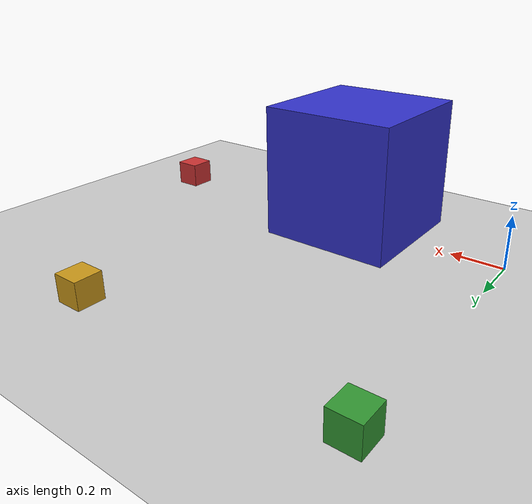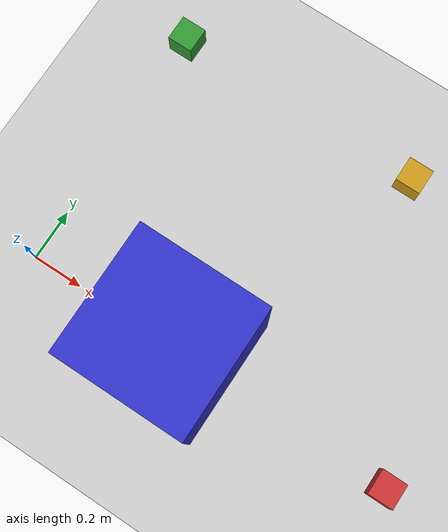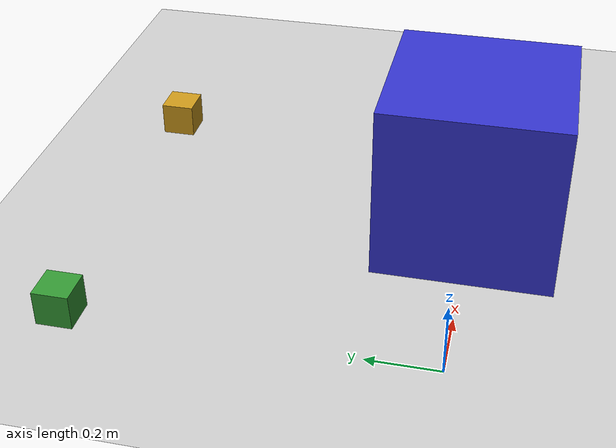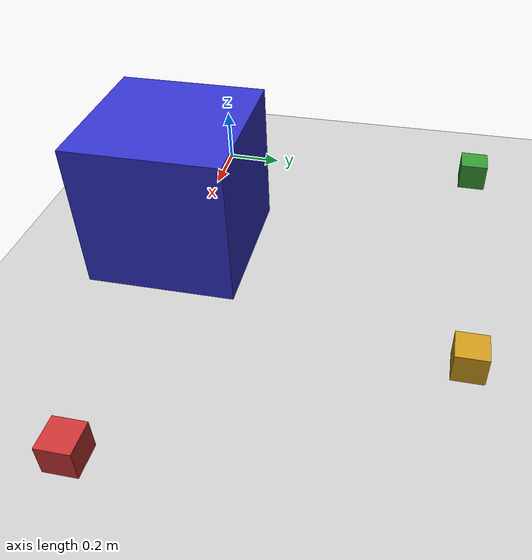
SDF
<?xml version="1.0" ?>
<sdf version="1.6">
    <world name="obstacle_world">

        <physics type="ode">
            <max_step_size>0.001</max_step_size>
            <real_time_factor>1.0</real_time_factor>
            <real_time_update_rate>1000</real_time_update_rate>
        </physics>

        <include>
            <uri>model://sun</uri>
        </include>

        <include>
            <uri>model://ground_plane</uri>
        </include>

        <!-- Obstacle 1: directly ahead at +1.5m X (red) -->
        <model name="obstacle_1">
            <static>true</static>
            <pose>1.5 0 0.05 0 0 0</pose>
            <link name="link">
                <collision name="collision">
                    <geometry>
                        <box><size>0.1 0.1 0.1</size></box>
                    </geometry>
                </collision>
                <visual name="visual">
                    <geometry>
                        <box><size>0.1 0.1 0.1</size></box>
                    </geometry>
                    <material>
                        <ambient>0.8 0.2 0.2 1</ambient>
                        <diffuse>0.8 0.2 0.2 1</diffuse>
                    </material>
                </visual>
            </link>
        </model>

        <!-- Obstacle 2: to the left at +1.0m Y (green) -->
        <model name="obstacle_2">
            <static>true</static>
            <pose>0 1.0 0.05 0 0 0</pose>
            <link name="link">
                <collision name="collision">
                    <geometry>
                        <box><size>0.1 0.1 0.1</size></box>
                    </geometry>
                </collision>
                <visual name="visual">
                    <geometry>
                        <box><size>0.1 0.1 0.1</size></box>
                    </geometry>
                    <material>
                        <ambient>0.2 0.6 0.2 1</ambient>
                        <diffuse>0.2 0.6 0.2 1</diffuse>
                    </material>
                </visual>
            </link>
        </model>

        <!-- Obstacle 3: directly ahead at +0.6m X (blue) -->
        <model name="obstacle_3">
            <static>true</static>
            <pose>0.6 0 0.25 0 0 0</pose>
            <link name="link">
                <collision name="collision">
                    <geometry>
                        <box><size>0.5 0.5 0.5</size></box>
                    </geometry>
                </collision>
                <visual name="visual">
                    <geometry>
                        <box><size>0.5 0.5 0.5</size></box>
                    </geometry>
                    <material>
                        <ambient>0.2 0.2 0.8 1</ambient>
                        <diffuse>0.2 0.2 0.8 1</diffuse>
                    </material>
                </visual>
            </link>
        </model>

        <!-- Obstacle 4: diagonal at +1.0m X, +1.0m Y (yellow) -->
        <model name="obstacle_4">
            <static>true</static>
            <pose>1.0 1.0 0.05 0 0 0</pose>
            <link name="link">
                <collision name="collision">
                    <geometry>
                        <box><size>0.1 0.1 0.1</size></box>
                    </geometry>
                </collision>
                <visual name="visual">
                    <geometry>
                        <box><size>0.1 0.1 0.1</size></box>
                    </geometry>
                    <material>
                        <ambient>0.8 0.6 0.1 1</ambient>
                        <diffuse>0.8 0.6 0.1 1</diffuse>
                    </material>
                </visual>
            </link>
        </model>

    </world>
</sdf>
